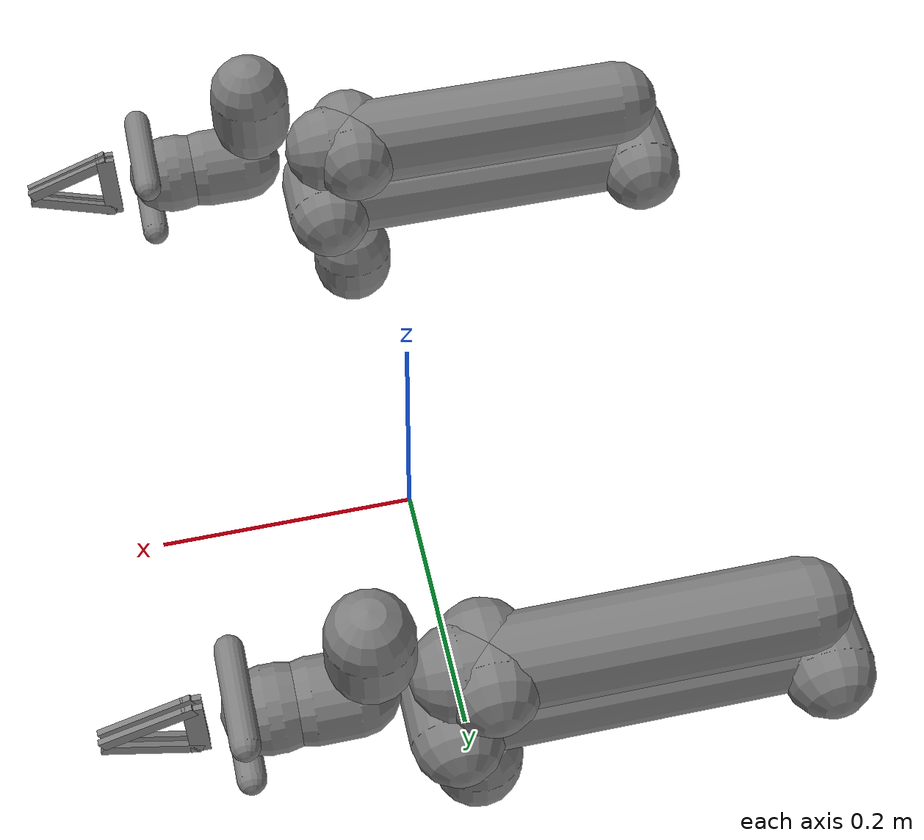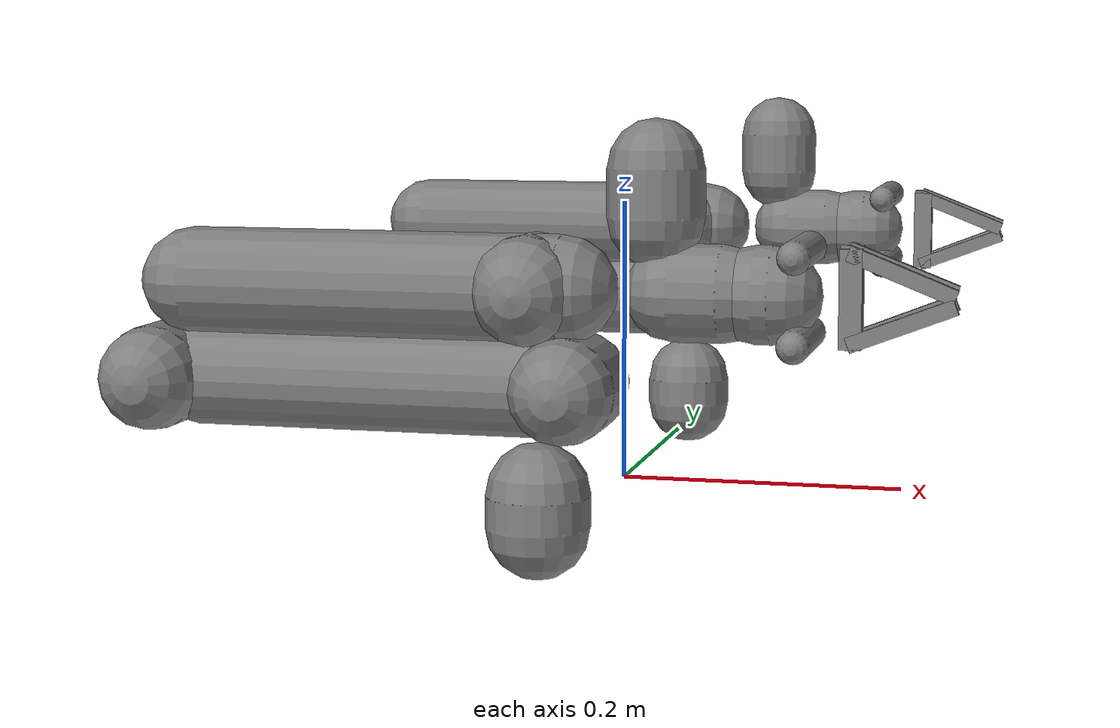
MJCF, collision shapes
<mujoco model="bimanual_yam_linear">
  <compiler angle="radian" meshdir="assets/"/>

  <option integrator="implicitfast"/>

  <default>
    <default class="left_main">
      <default class="left_yam">
        <joint frictionloss="0.1"/>
        <general biastype="affine" biasprm="0 -1"/>
        <default class="left_dm4340">
          <joint armature="0.032"/>
          <general forcerange="-28 28" gainprm="40" biasprm="0 -40 -2.5"/>
        </default>
        <default class="left_dm4310">
          <joint armature="0.0018"/>
          <general forcerange="-10 10" gainprm="10" biasprm="0 -10 -1"/>
        </default>
        <default class="left_visual">
          <geom type="mesh" contype="0" conaffinity="0" density="0" material="black"/>
        </default>
        <default class="left_collision">
          <geom type="capsule" group="4"/>
          <default class="left_sphere_collision">
            <geom size="0.0006 0 0" type="sphere" rgba="1 0 0 1"/>
          </default>
        </default>
        <default class="left_finger">
          <joint type="slide" armature="0.1"/>
          <general ctrlrange="0 0.1" gainprm="100" biasprm="0 -100 -10"/>
        </default>
      </default>
    </default>
    <default class="right_main">
      <default class="right_yam">
        <joint frictionloss="0.1"/>
        <general biastype="affine" biasprm="0 -1"/>
        <default class="right_dm4340">
          <joint armature="0.032"/>
          <general forcerange="-28 28" gainprm="40" biasprm="0 -40 -2.5"/>
        </default>
        <default class="right_dm4310">
          <joint armature="0.0018"/>
          <general forcerange="-10 10" gainprm="10" biasprm="0 -10 -1"/>
        </default>
        <default class="right_visual">
          <geom type="mesh" contype="0" conaffinity="0" density="0" material="black"/>
        </default>
        <default class="right_collision">
          <geom type="capsule" group="4"/>
          <default class="right_sphere_collision">
            <geom size="0.0006 0 0" type="sphere" rgba="1 0 0 1"/>
          </default>
        </default>
        <default class="right_finger">
          <joint type="slide" armature="0.1"/>
          <general ctrlrange="0 0.1" gainprm="100" biasprm="0 -100 -10"/>
        </default>
      </default>
    </default>
  </default>

  <asset>
    <material name="left_black" rgba="0.25 0.25 0.25 1"/>
    <material name="left_white" rgba="0.9 0.9 0.9 1"/>
    <material name="right_black" rgba="0.25 0.25 0.25 1"/>
    <material name="right_white" rgba="0.9 0.9 0.9 1"/>
    <mesh name="left_model2" content_type="model/obj" file="model2.obj"/>
    <mesh name="left_model2__2" content_type="model/obj" file="model2__2.obj"/>
    <mesh name="left_model2__3" content_type="model/obj" file="model2__3.obj"/>
    <mesh name="left_model2__4" content_type="model/obj" file="model2__4.obj"/>
    <mesh name="left_model2__5" content_type="model/obj" file="model2__5.obj"/>
    <mesh name="left_model2__6" content_type="model/obj" file="model2__6.obj"/>
    <mesh name="left_model2__7" content_type="model/obj" file="model2__7.obj"/>
    <mesh name="left_model2__8" content_type="model/obj" file="model2__8.obj"/>
    <mesh name="left_model2__9" content_type="model/obj" file="model2__9.obj"/>
    <mesh name="left_model2__10" content_type="model/obj" file="model2__10.obj"/>
    <mesh name="left_model2__11" content_type="model/obj" file="model2__11.obj"/>
    <mesh name="left_model2__12" content_type="model/obj" file="model2__12.obj"/>
    <mesh name="left_model2__13" content_type="model/obj" file="model2__13.obj"/>
    <mesh name="left_model2__14" content_type="model/obj" file="model2__14.obj"/>
    <mesh name="left_model2__15" content_type="model/obj" file="model2__15.obj"/>
    <mesh name="left_model2__16" content_type="model/obj" file="model2__16.obj"/>
    <mesh name="left_model2__17" content_type="model/obj" file="model2__17.obj"/>
    <mesh name="left_model_gripper" content_type="model/obj" file="gripper_linear.obj"/>
    <mesh name="left_model_tip_left" content_type="model/obj" file="tip_left_linear.obj"/>
    <mesh name="left_model_tip_right" content_type="model/obj" file="tip_right_linear.obj"/>
    <mesh name="right_model2" file="model2.obj"/>
    <mesh name="right_model2__2" file="model2__2.obj"/>
    <mesh name="right_model2__3" file="model2__3.obj"/>
    <mesh name="right_model2__4" file="model2__4.obj"/>
    <mesh name="right_model2__5" file="model2__5.obj"/>
    <mesh name="right_model2__6" file="model2__6.obj"/>
    <mesh name="right_model2__7" file="model2__7.obj"/>
    <mesh name="right_model2__8" file="model2__8.obj"/>
    <mesh name="right_model2__9" file="model2__9.obj"/>
    <mesh name="right_model2__10" file="model2__10.obj"/>
    <mesh name="right_model2__11" file="model2__11.obj"/>
    <mesh name="right_model2__12" file="model2__12.obj"/>
    <mesh name="right_model2__13" file="model2__13.obj"/>
    <mesh name="right_model2__14" file="model2__14.obj"/>
    <mesh name="right_model2__15" file="model2__15.obj"/>
    <mesh name="right_model2__16" file="model2__16.obj"/>
    <mesh name="right_model2__17" file="model2__17.obj"/>
    <mesh name="right_model_gripper" file="gripper_linear.obj"/>
    <mesh name="right_model_tip_left" file="tip_left_linear.obj"/>
    <mesh name="right_model_tip_right" file="tip_right_linear.obj"/>
  </asset>

  <worldbody>
    <body name="bimanual_base">
      <body name="left_arm" childclass="left_yam" pos="0 0.24 0">
        <geom class="left_visual" pos="0 0 -0.0006" quat="0.707107 0 0 0.707107" material="left_black" mesh="left_model2"/>
        <geom class="left_collision" size="0.033 0.01" pos="0 0 0.026"/>
        <body name="left_link_1" pos="0 0 0.0631" quat="0.707107 0 0 0.707107">
          <inertial pos="-0.00192861 -0.00795735 0.0208176" quat="0.297851 0.642634 0.360045 0.607185" mass="0.12415" diaginertia="0.000180751 0.000145532 5.89179e-05"/>
          <joint name="left_joint1" class="left_dm4340" pos="0 0 0" axis="0 0 1" range="-2.61799 3.05433"/>
          <geom class="left_visual" pos="5.26159e-07 2.34355e-07 -0.0632" quat="1 0 0 0" material="left_black" mesh="left_model2__2"/>
          <body name="left_link_2" pos="2.5e-05 -0.02 0.0409" quat="0.5 0.5 0.5 0.5" gravcomp="1">
            <inertial pos="0.132008 2.10599e-06 0.000293073" quat="0.5 0.5 0.5 0.5" mass="1.24434" diaginertia="0.0121902 0.0121318 0.000683304"/>
            <joint name="left_joint2" class="left_dm4340" pos="0 0 0" axis="0 0 1" range="0 3.66519"/>
            <geom class="left_visual" pos="0.0199992 -0.1041 -2.44738e-05" quat="0.5 -0.5 -0.5 -0.5" material="left_black" mesh="left_model2__3"/>
            <geom class="left_visual" pos="0.0199992 -0.1041 -2.44738e-05" quat="0.5 -0.5 -0.5 -0.5" material="left_black" mesh="left_model2__4"/>
            <geom class="left_visual" pos="0.0199992 -0.1041 -2.44738e-05" quat="0.5 -0.5 -0.5 -0.5" material="left_white" mesh="left_model2__5"/>
            <geom class="left_collision" size="0.032 0.11" pos="0.13 0 0" quat="0.707107 0 0.707107 0"/>
            <geom class="left_collision" size="0.033 0.02"/>
            <geom class="left_collision" size="0.033 0.025" pos="0.265 0 0"/>
            <body name="left_link_3" pos="0.264 0 0" quat="0 1 0 0" gravcomp="1">
              <inertial pos="-0.121816 -0.054846 -0.000111108" quat="0.5 0.5 0.5 0.5" mass="0.853698" diaginertia="0.00699732 0.00696112 0.000788244"/>
              <joint name="left_joint3" class="left_dm4340" pos="0 0 0" axis="0 0 1" range="0 3.66519"/>
              <geom class="left_visual" pos="-0.244001 0.104101 2.44738e-05" quat="0.5 0.5 0.5 -0.5" material="left_black" mesh="left_model2__6"/>
              <geom class="left_visual" pos="-0.244001 0.104101 2.44738e-05" quat="0.5 0.5 0.5 -0.5" material="left_black" mesh="left_model2__7"/>
              <geom class="left_visual" pos="-0.244001 0.104101 2.44738e-05" quat="0.5 0.5 0.5 -0.5" material="left_white" mesh="left_model2__8"/>
              <geom class="left_visual" pos="-0.244001 0.104101 2.44738e-05" quat="0.5 0.5 0.5 -0.5" material="left_black" mesh="left_model2__9"/>
              <geom class="left_collision" size="0.034 0.12" pos="-0.14 -0.06 0" quat="0.707107 0 0.707107 0"/>
              <geom class="left_collision" size="0.034 0.015" pos="-0.24 -0.06 0"/>
              <body name="left_link_4" pos="-0.245 -0.06 0" gravcomp="1">
                <inertial pos="-0.0769778 -0.0527104 0.000154878" quat="0.66661 0.66661 -0.235862 -0.235862" mass="0.463511" diaginertia="0.000791532 0.000744733 0.000282116"/>
                <joint name="left_joint4" class="left_dm4310" pos="0 0 0" axis="0 0 1" range="-1.5708 1.5708"/>
                <geom class="left_visual" pos="0.00100023 0.164101 2.44738e-05" quat="0.5 0.5 0.5 -0.5" material="left_black" mesh="left_model2__10"/>
                <geom class="left_collision" size="0.03 0.015" pos="-0.073 -0.06 0" quat="0.707107 0.707107 0 0"/>
                <body name="left_link_5" pos="-0.074 -0.0395 2.5e-05" quat="0.5 -0.5 0.5 0.5" gravcomp="1">
                  <inertial pos="3.64861e-05 0.00025665 0.0353526" mass="0.350962" diaginertia="0.000197802 0.0001775 0.000147402"/>
                  <joint name="left_joint5" class="left_dm4310" pos="0 0 0" axis="0 0 1" range="-1.5708 1.5708"/>
                  <geom class="left_visual" pos="0 -0.0749971 0.203601" quat="1.32679e-06 1 0 0" material="left_black" mesh="left_model2__11"/>
                  <geom class="left_collision" size="0.03 0.015" pos="0 0.025 0.0395" quat="0.707107 0.707107 0 0"/>
                  <body name="left_link_6" pos="0 0.0353 0.0395" quat="0.707107 -0.707107 0 0" gravcomp="1">
                    <joint name="left_joint6" class="left_dm4310" pos="0 0 0" axis="0 0 -1" range="-2.0944 2.0944"/>
                    <geom name="left_link6_visual" class="left_visual" pos="0 0 0.027" quat="0 0.707107 -0.707107 0" material="left_black" mesh="left_model_gripper"/>
                    <geom class="left_collision" size="0.01 0.035" pos="0 0.026 0.052" quat="0.707107 0 0.707107 0"/>
                    <geom class="left_collision" size="0.03 0.005" pos="0 0 0.03" quat="0.707107 0 0 0.707107"/>
                    <geom class="left_collision" size="0.01 0.035" pos="0 -0.026 0.052" quat="0.707107 0 0.707107 0"/>
                    <site name="left_tcp_site" pos="0 0 0" quat="0.707107 0 0 -0.707107" group="4" rgba="1 0 0 1"/>
                    <site name="left_grasp_site" pos="0 0 0.1347" quat="0.707107 0 0 -0.707107" group="4" rgba="0 1 0 1"/>
                    <body name="left_link_left_finger" pos="-0.037 0.0392 0.0605" quat="0.707107 0 0.707107 0" gravcomp="1">
                      <joint name="left_left_finger" class="left_finger" pos="0 0 0" axis="0 0 1" range="-0.0485 0"/>
                      <geom name="left_left_tip_visual" class="left_visual" pos="-0.03992 -0.0392 0.049" quat="0.5 0.5 0.5 0.5" material="left_black" mesh="left_model_tip_left"/>
                      <geom name="left_left_tip_collider_0" class="left_collision" size="0.0068 0.03 0.002" pos="-0.021 -0.04 0.0331" type="box"/>
                      <geom name="left_left_tip_collider_1" class="left_collision" size="0.0048 0.034 0.002" pos="-0.051 -0.025 0.0331" quat="0.561168 0 0 0.827702" type="box"/>
                      <geom name="left_left_tip_collider_2" class="left_collision" size="0.0048 0.034 0.002" pos="-0.051 -0.055 0.0331" quat="0.825336 0 0 0.564642" type="box"/>
                    </body>
                    <body name="left_link_right_finger" pos="0.037 -0.0392 0.0605" quat="0.707107 0 0.707107 0" gravcomp="1">
                      <joint name="left_right_finger" class="left_finger" pos="0 0 0" axis="0 0 -1" range="-0.0485 0"/>
                      <geom name="left_right_tip_visual" class="left_visual" pos="-0.03992 0.0392 -0.049" quat="0.5 0.5 0.5 0.5" material="left_black" mesh="left_model_tip_right"/>
                      <geom name="left_right_tip_collider_0" class="left_collision" size="0.0068 0.03 0.002" pos="-0.021 0.04 -0.0331" type="box"/>
                      <geom name="left_right_tip_collider_1" class="left_collision" size="0.0048 0.034 0.002" pos="-0.051 0.025 -0.0331" quat="0.561168 0 0 -0.827702" type="box"/>
                      <geom name="left_right_tip_collider_2" class="left_collision" size="0.0048 0.034 0.002" pos="-0.051 0.055 -0.0331" quat="0.825336 0 0 -0.564642" type="box"/>
                    </body>
                  </body>
                </body>
              </body>
            </body>
          </body>
        </body>
      </body>
      <body name="right_arm" childclass="right_yam" pos="0 -0.24 0">
        <geom class="right_visual" pos="0 0 -0.0006" quat="0.707107 0 0 0.707107" material="right_black" mesh="right_model2"/>
        <geom class="right_collision" size="0.033 0.01" pos="0 0 0.026"/>
        <body name="right_link_1" pos="0 0 0.0631" quat="0.707107 0 0 0.707107">
          <inertial pos="-0.00192861 -0.00795735 0.0208176" quat="0.297851 0.642634 0.360045 0.607185" mass="0.12415" diaginertia="0.000180751 0.000145532 5.89179e-05"/>
          <joint name="right_joint1" class="right_dm4340" pos="0 0 0" axis="0 0 1" range="-2.61799 3.05433"/>
          <geom class="right_visual" pos="5.26159e-07 2.34355e-07 -0.0632" quat="1 0 0 0" material="right_black" mesh="right_model2__2"/>
          <body name="right_link_2" pos="2.5e-05 -0.02 0.0409" quat="0.5 0.5 0.5 0.5" gravcomp="1">
            <inertial pos="0.132008 2.10599e-06 0.000293073" quat="0.5 0.5 0.5 0.5" mass="1.24434" diaginertia="0.0121902 0.0121318 0.000683304"/>
            <joint name="right_joint2" class="right_dm4340" pos="0 0 0" axis="0 0 1" range="0 3.66519"/>
            <geom class="right_visual" pos="0.0199992 -0.1041 -2.44738e-05" quat="0.5 -0.5 -0.5 -0.5" material="right_black" mesh="right_model2__3"/>
            <geom class="right_visual" pos="0.0199992 -0.1041 -2.44738e-05" quat="0.5 -0.5 -0.5 -0.5" material="right_black" mesh="right_model2__4"/>
            <geom class="right_visual" pos="0.0199992 -0.1041 -2.44738e-05" quat="0.5 -0.5 -0.5 -0.5" material="right_white" mesh="right_model2__5"/>
            <geom class="right_collision" size="0.032 0.11" pos="0.13 0 0" quat="0.707107 0 0.707107 0"/>
            <geom class="right_collision" size="0.033 0.02"/>
            <geom class="right_collision" size="0.033 0.025" pos="0.265 0 0"/>
            <body name="right_link_3" pos="0.264 0 0" quat="0 1 0 0" gravcomp="1">
              <inertial pos="-0.121816 -0.054846 -0.000111108" quat="0.5 0.5 0.5 0.5" mass="0.853698" diaginertia="0.00699732 0.00696112 0.000788244"/>
              <joint name="right_joint3" class="right_dm4340" pos="0 0 0" axis="0 0 1" range="0 3.66519"/>
              <geom class="right_visual" pos="-0.244001 0.104101 2.44738e-05" quat="0.5 0.5 0.5 -0.5" material="right_black" mesh="right_model2__6"/>
              <geom class="right_visual" pos="-0.244001 0.104101 2.44738e-05" quat="0.5 0.5 0.5 -0.5" material="right_black" mesh="right_model2__7"/>
              <geom class="right_visual" pos="-0.244001 0.104101 2.44738e-05" quat="0.5 0.5 0.5 -0.5" material="right_white" mesh="right_model2__8"/>
              <geom class="right_visual" pos="-0.244001 0.104101 2.44738e-05" quat="0.5 0.5 0.5 -0.5" material="right_black" mesh="right_model2__9"/>
              <geom class="right_collision" size="0.034 0.12" pos="-0.14 -0.06 0" quat="0.707107 0 0.707107 0"/>
              <geom class="right_collision" size="0.034 0.015" pos="-0.24 -0.06 0"/>
              <body name="right_link_4" pos="-0.245 -0.06 0" gravcomp="1">
                <inertial pos="-0.0769778 -0.0527104 0.000154878" quat="0.66661 0.66661 -0.235862 -0.235862" mass="0.463511" diaginertia="0.000791532 0.000744733 0.000282116"/>
                <joint name="right_joint4" class="right_dm4310" pos="0 0 0" axis="0 0 1" range="-1.5708 1.5708"/>
                <geom class="right_visual" pos="0.00100023 0.164101 2.44738e-05" quat="0.5 0.5 0.5 -0.5" material="right_black" mesh="right_model2__10"/>
                <geom class="right_collision" size="0.03 0.015" pos="-0.073 -0.06 0" quat="0.707107 0.707107 0 0"/>
                <body name="right_link_5" pos="-0.074 -0.0395 2.5e-05" quat="0.5 -0.5 0.5 0.5" gravcomp="1">
                  <inertial pos="3.64861e-05 0.00025665 0.0353526" mass="0.350962" diaginertia="0.000197802 0.0001775 0.000147402"/>
                  <joint name="right_joint5" class="right_dm4310" pos="0 0 0" axis="0 0 1" range="-1.5708 1.5708"/>
                  <geom class="right_visual" pos="0 -0.0749971 0.203601" quat="1.32679e-06 1 0 0" material="right_black" mesh="right_model2__11"/>
                  <geom class="right_collision" size="0.03 0.015" pos="0 0.025 0.0395" quat="0.707107 0.707107 0 0"/>
                  <body name="right_link_6" pos="0 0.0353 0.0395" quat="0.707107 -0.707107 0 0" gravcomp="1">
                    <joint name="right_joint6" class="right_dm4310" pos="0 0 0" axis="0 0 -1" range="-2.0944 2.0944"/>
                    <geom name="right_link6_visual" class="right_visual" pos="0 0 0.027" quat="0 0.707107 -0.707107 0" material="right_black" mesh="right_model_gripper"/>
                    <geom class="right_collision" size="0.01 0.035" pos="0 0.026 0.052" quat="0.707107 0 0.707107 0"/>
                    <geom class="right_collision" size="0.03 0.005" pos="0 0 0.03" quat="0.707107 0 0 0.707107"/>
                    <geom class="right_collision" size="0.01 0.035" pos="0 -0.026 0.052" quat="0.707107 0 0.707107 0"/>
                    <site name="right_tcp_site" pos="0 0 0" quat="0.707107 0 0 -0.707107" group="4" rgba="1 0 0 1"/>
                    <site name="right_grasp_site" pos="0 0 0.1347" quat="0.707107 0 0 -0.707107" group="4" rgba="0 1 0 1"/>
                    <body name="right_link_left_finger" pos="-0.037 0.0392 0.0605" quat="0.707107 0 0.707107 0" gravcomp="1">
                      <joint name="right_left_finger" class="right_finger" pos="0 0 0" axis="0 0 1" range="-0.0485 0"/>
                      <geom name="right_left_tip_visual" class="right_visual" pos="-0.03992 -0.0392 0.049" quat="0.5 0.5 0.5 0.5" material="right_black" mesh="right_model_tip_left"/>
                      <geom name="right_left_tip_collider_0" class="right_collision" size="0.0068 0.03 0.002" pos="-0.021 -0.04 0.0331" type="box"/>
                      <geom name="right_left_tip_collider_1" class="right_collision" size="0.0048 0.034 0.002" pos="-0.051 -0.025 0.0331" quat="0.561168 0 0 0.827702" type="box"/>
                      <geom name="right_left_tip_collider_2" class="right_collision" size="0.0048 0.034 0.002" pos="-0.051 -0.055 0.0331" quat="0.825336 0 0 0.564642" type="box"/>
                    </body>
                    <body name="right_link_right_finger" pos="0.037 -0.0392 0.0605" quat="0.707107 0 0.707107 0" gravcomp="1">
                      <joint name="right_right_finger" class="right_finger" pos="0 0 0" axis="0 0 -1" range="-0.0485 0"/>
                      <geom name="right_right_tip_visual" class="right_visual" pos="-0.03992 0.0392 -0.049" quat="0.5 0.5 0.5 0.5" material="right_black" mesh="right_model_tip_right"/>
                      <geom name="right_right_tip_collider_0" class="right_collision" size="0.0068 0.03 0.002" pos="-0.021 0.04 -0.0331" type="box"/>
                      <geom name="right_right_tip_collider_1" class="right_collision" size="0.0048 0.034 0.002" pos="-0.051 0.025 -0.0331" quat="0.561168 0 0 -0.827702" type="box"/>
                      <geom name="right_right_tip_collider_2" class="right_collision" size="0.0048 0.034 0.002" pos="-0.051 0.055 -0.0331" quat="0.825336 0 0 -0.564642" type="box"/>
                    </body>
                  </body>
                </body>
              </body>
            </body>
          </body>
        </body>
      </body>
    </body>
  </worldbody>

  <actuator>
    <general name="left_joint1" class="left_dm4340" joint="left_joint1" ctrlrange="-2.61799 3.05433"/>
    <general name="left_joint2" class="left_dm4340" joint="left_joint2" ctrlrange="0 3.66519"/>
    <general name="left_joint3" class="left_dm4340" joint="left_joint3" ctrlrange="0 3.66519"/>
    <general name="left_joint4" class="left_dm4310" joint="left_joint4" ctrlrange="-1.5708 1.5708" gainprm="20" biasprm="0 -20 -0.5"/>
    <general name="left_joint5" class="left_dm4310" joint="left_joint5" ctrlrange="-1.5708 1.5708"/>
    <general name="left_joint6" class="left_dm4310" joint="left_joint6" ctrlrange="-2.0944 2.0944"/>
    <general name="left_gripper_left_tip" class="left_finger" joint="left_left_finger" ctrlrange="-0.0475 0"/>
    <general name="left_gripper_right_tip" class="left_finger" joint="left_right_finger" ctrlrange="-0.0475 0"/>
    <general name="right_joint1" class="right_dm4340" joint="right_joint1" ctrlrange="-2.61799 3.05433"/>
    <general name="right_joint2" class="right_dm4340" joint="right_joint2" ctrlrange="0 3.66519"/>
    <general name="right_joint3" class="right_dm4340" joint="right_joint3" ctrlrange="0 3.66519"/>
    <general name="right_joint4" class="right_dm4310" joint="right_joint4" ctrlrange="-1.5708 1.5708" gainprm="20" biasprm="0 -20 -0.5"/>
    <general name="right_joint5" class="right_dm4310" joint="right_joint5" ctrlrange="-1.5708 1.5708"/>
    <general name="right_joint6" class="right_dm4310" joint="right_joint6" ctrlrange="-2.0944 2.0944"/>
    <general name="right_gripper_left_tip" class="right_finger" joint="right_left_finger" ctrlrange="-0.0475 0"/>
    <general name="right_gripper_right_tip" class="right_finger" joint="right_right_finger" ctrlrange="-0.0475 0"/>
  </actuator>
</mujoco>
